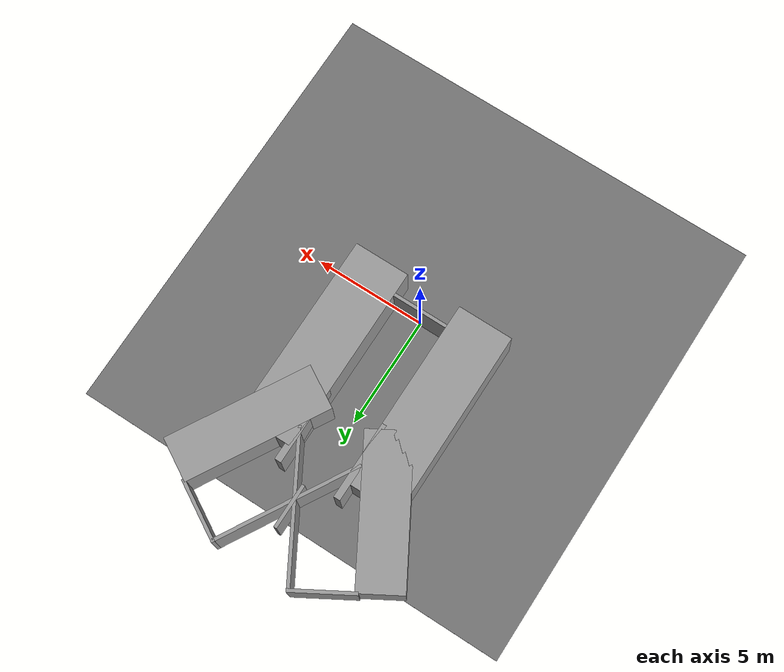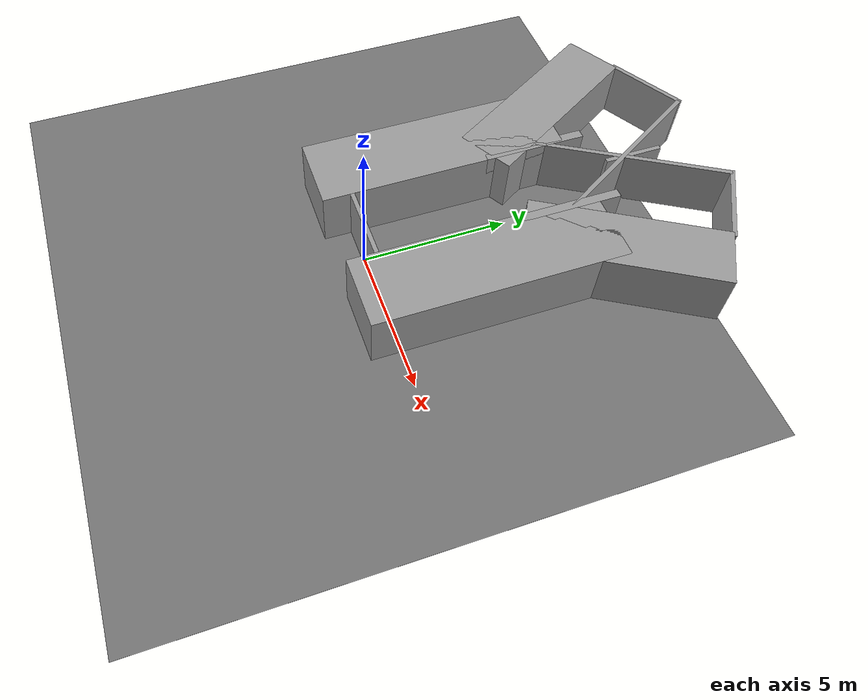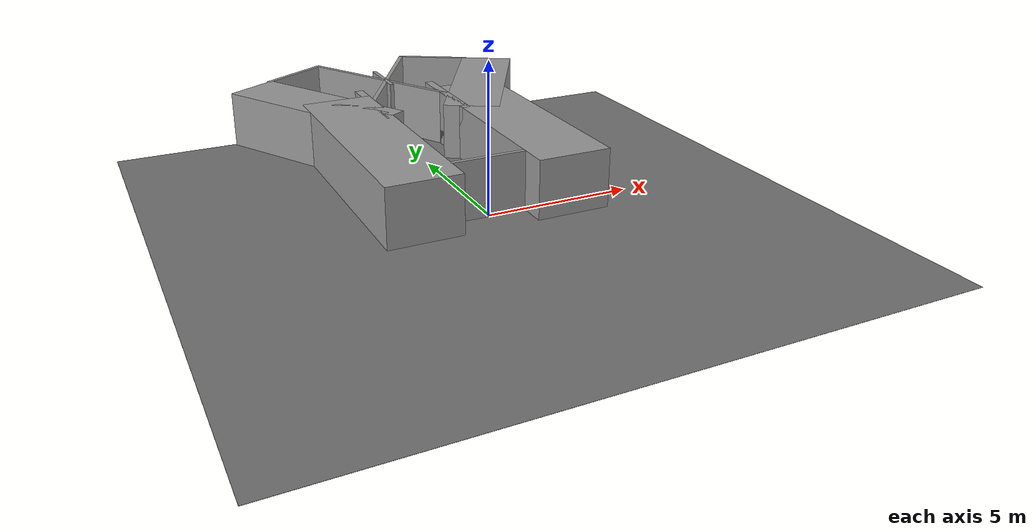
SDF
<?xml version="1.0" ?>
<sdf version="1.9">
  <world name="default">
    <plugin filename="gz-sim-physics-system" name="gz::sim::systems::Physics"/>
    <plugin filename="gz-sim-user-commands-system" name="gz::sim::systems::UserCommands"/>
    <plugin filename="gz-sim-scene-broadcaster-system" name="gz::sim::systems::SceneBroadcaster"/>
    <plugin filename="gz-sim-sensors-system" name="gz::sim::systems::Sensors">
      <render_engine>ogre2</render_engine>
    </plugin>
    <plugin filename="gz-sim-imu-system" name="gz::sim::systems::Imu"/>

    <light name="sun" type="directional">
      <cast_shadows>true</cast_shadows>
      <pose>0 0 10 0 0 0</pose>
      <diffuse>0.8 0.8 0.8 1</diffuse>
      <specular>0.2 0.2 0.2 1</specular>
      <attenuation>
        <range>1000</range>
        <constant>0.9</constant>
        <linear>0.01</linear>
        <quadratic>0.001</quadratic>
      </attenuation>
      <direction>-0.5 0.1 -0.9</direction>
    </light>

    <model name="ground_plane">
      <static>true</static>
      <link name="ground_link">
        <collision name="ground_collision">
          <geometry>
            <box>
              <size>20 20 0.01</size>
            </box>
          </geometry>
        </collision>
        <visual name="ground_visual">
          <geometry>
            <box>
              <size>20 20 0.01</size>
            </box>
          </geometry>
          <material>
            <ambient>0.45 0.45 0.45 1</ambient>
            <diffuse>0.45 0.45 0.45 1</diffuse>
          </material>
        </visual>
      </link>
    </model>

    <model name="branching_tunnel_y">
      <static>true</static>
      <pose>0 0 0 0 0 0</pose>

      <link name="walls">
        <collision name="trunk_left_slab_collision">
          <pose>-2.5 3.25 1.0 0 0 0</pose>
          <geometry>
            <box>
              <size>2.5 8.5 2.0</size>
            </box>
          </geometry>
        </collision>
        <visual name="trunk_left_slab_visual">
          <pose>-2.5 3.25 1.0 0 0 0</pose>
          <geometry>
            <box>
              <size>2.5 8.5 2.0</size>
            </box>
          </geometry>
          <material>
            <ambient>0.6 0.6 0.6 1</ambient>
            <diffuse>0.6 0.6 0.6 1</diffuse>
          </material>
        </visual>

        <collision name="trunk_right_slab_collision">
          <pose>2.5 3.25 1.0 0 0 0</pose>
          <geometry>
            <box>
              <size>2.5 8.5 2.0</size>
            </box>
          </geometry>
        </collision>
        <visual name="trunk_right_slab_visual">
          <pose>2.5 3.25 1.0 0 0 0</pose>
          <geometry>
            <box>
              <size>2.5 8.5 2.0</size>
            </box>
          </geometry>
          <material>
            <ambient>0.6 0.6 0.6 1</ambient>
            <diffuse>0.6 0.6 0.6 1</diffuse>
          </material>
        </visual>

        <!-- Back wall at y=0.0: prevents rearward frontier generation.
             Sized to just cover trunk width (2.5m spans x∈[-1.25, 1.25]). -->
        <collision name="back_wall_collision">
          <pose>0 0.0 1.0 0 0 0</pose>
          <geometry>
            <box>
              <size>2.5 0.15 2.0</size>
            </box>
          </geometry>
        </collision>
        <visual name="back_wall_visual">
          <pose>0 0.0 1.0 0 0 0</pose>
          <geometry>
            <box>
              <size>2.5 0.15 2.0</size>
            </box>
          </geometry>
          <material>
            <ambient>0.6 0.6 0.6 1</ambient>
            <diffuse>0.6 0.6 0.6 1</diffuse>
          </material>
        </visual>

        <!-- Left branch outer thick slab: inner face at corridor boundary,
             extends 2.0m outward so exterior space is solid, not navigable. -->
        <collision name="left_branch_outer_collision">
          <pose>-3.249 7.627 1.0 0 0 2.094395</pose>
          <geometry>
            <box>
              <size>6.5 2.0 2.0</size>
            </box>
          </geometry>
        </collision>
        <visual name="left_branch_outer_visual">
          <pose>-3.249 7.627 1.0 0 0 2.094395</pose>
          <geometry>
            <box>
              <size>6.5 2.0 2.0</size>
            </box>
          </geometry>
          <material>
            <ambient>0.6 0.6 0.6 1</ambient>
            <diffuse>0.6 0.6 0.6 1</diffuse>
          </material>
        </visual>

        <collision name="left_branch_inner_collision">
          <pose>-0.153 9.415 1.0 0 0 2.094395</pose>
          <geometry>
            <box>
              <size>6.5 0.15 2.0</size>
            </box>
          </geometry>
        </collision>
        <visual name="left_branch_inner_visual">
          <pose>-0.153 9.415 1.0 0 0 2.094395</pose>
          <geometry>
            <box>
              <size>6.5 0.15 2.0</size>
            </box>
          </geometry>
          <material>
            <ambient>0.6 0.6 0.6 1</ambient>
            <diffuse>0.6 0.6 0.6 1</diffuse>
          </material>
        </visual>

        <!-- Right branch, centerline from junction (0, 6.5), yaw = 60 deg = 1.047 rad. -->
        <collision name="right_branch_inner_collision">
          <pose>0.154 9.415 1.0 0 0 1.047198</pose>
          <geometry>
            <box>
              <size>6.5 0.15 2.0</size>
            </box>
          </geometry>
        </collision>
        <visual name="right_branch_inner_visual">
          <pose>0.154 9.415 1.0 0 0 1.047198</pose>
          <geometry>
            <box>
              <size>6.5 0.15 2.0</size>
            </box>
          </geometry>
          <material>
            <ambient>0.6 0.6 0.6 1</ambient>
            <diffuse>0.6 0.6 0.6 1</diffuse>
          </material>
        </visual>

        <collision name="right_branch_outer_collision">
          <pose>3.249 7.627 1.0 0 0 1.047198</pose>
          <geometry>
            <box>
              <size>6.5 2.0 2.0</size>
            </box>
          </geometry>
        </collision>
        <visual name="right_branch_outer_visual">
          <pose>3.249 7.627 1.0 0 0 1.047198</pose>
          <geometry>
            <box>
              <size>6.5 2.0 2.0</size>
            </box>
          </geometry>
          <material>
            <ambient>0.6 0.6 0.6 1</ambient>
            <diffuse>0.6 0.6 0.6 1</diffuse>
          </material>
        </visual>

        <collision name="left_junction_filler_collision">
          <pose>-1.40 6.5 1.0 0 0 0</pose>
          <geometry>
            <box>
              <size>0.3 3.5 2.0</size>
            </box>
          </geometry>
        </collision>
        <visual name="left_junction_filler_visual">
          <pose>-1.40 6.5 1.0 0 0 0</pose>
          <geometry>
            <box>
              <size>0.3 3.5 2.0</size>
            </box>
          </geometry>
          <material>
            <ambient>0.6 0.6 0.6 1</ambient>
            <diffuse>0.6 0.6 0.6 1</diffuse>
          </material>
        </visual>

        <collision name="right_junction_filler_collision">
          <pose>1.40 6.5 1.0 0 0 0</pose>
          <geometry>
            <box>
              <size>0.3 3.5 2.0</size>
            </box>
          </geometry>
        </collision>
        <visual name="right_junction_filler_visual">
          <pose>1.40 6.5 1.0 0 0 0</pose>
          <geometry>
            <box>
              <size>0.3 3.5 2.0</size>
            </box>
          </geometry>
          <material>
            <ambient>0.6 0.6 0.6 1</ambient>
            <diffuse>0.6 0.6 0.6 1</diffuse>
          </material>
        </visual>

        <!-- Branch end caps: closed ends so frontiers have clean termination. -->
        <collision name="left_branch_end_collision">
          <pose>-2.925 11.567 1.0 0 0 2.094395</pose>
          <geometry>
            <box>
              <size>0.15 2.8 2.0</size>
            </box>
          </geometry>
        </collision>
        <visual name="left_branch_end_visual">
          <pose>-2.925 11.567 1.0 0 0 2.094395</pose>
          <geometry>
            <box>
              <size>0.15 2.8 2.0</size>
            </box>
          </geometry>
          <material>
            <ambient>0.6 0.6 0.6 1</ambient>
            <diffuse>0.6 0.6 0.6 1</diffuse>
          </material>
        </visual>

        <collision name="right_branch_end_collision">
          <pose>2.925 11.567 1.0 0 0 1.047198</pose>
          <geometry>
            <box>
              <size>0.15 2.8 2.0</size>
            </box>
          </geometry>
        </collision>
        <visual name="right_branch_end_visual">
          <pose>2.925 11.567 1.0 0 0 1.047198</pose>
          <geometry>
            <box>
              <size>0.15 2.8 2.0</size>
            </box>
          </geometry>
          <material>
            <ambient>0.6 0.6 0.6 1</ambient>
            <diffuse>0.6 0.6 0.6 1</diffuse>
          </material>
        </visual>
        <collision name="central_wedge_collision">
          <pose>0 9.5 1.0 0 0 0</pose>
          <geometry>
            <box>
              <size>0.15 2.0 2.0</size>
            </box>
          </geometry>
        </collision>
        <visual name="central_wedge_visual">
          <pose>0 9.5 1.0 0 0 0</pose>
          <geometry>
            <box>
              <size>0.15 2.0 2.0</size>
            </box>
          </geometry>
          <material>
            <ambient>0.6 0.6 0.6 1</ambient>
            <diffuse>0.6 0.6 0.6 1</diffuse>
          </material>
        </visual>
      </link>
    </model>
  </world>
</sdf>
